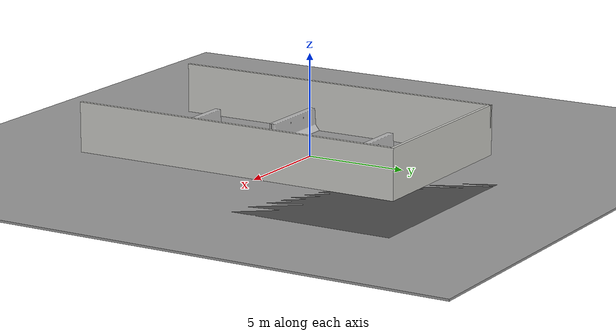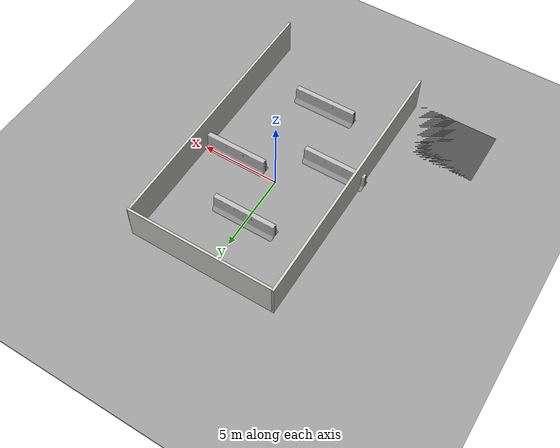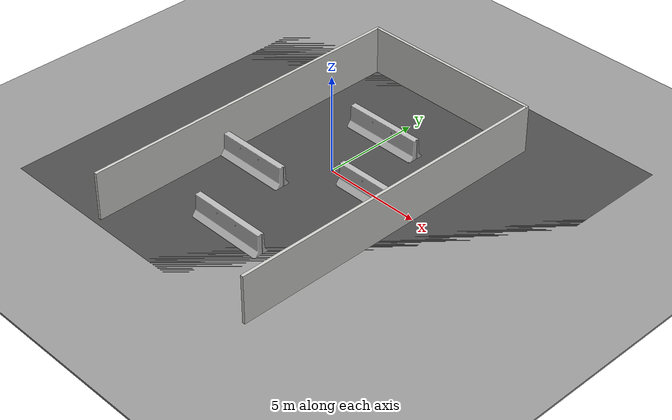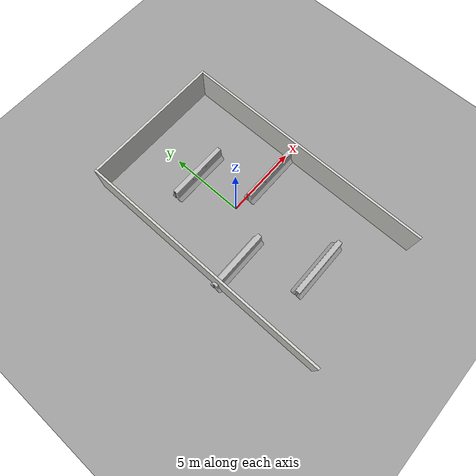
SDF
<sdf version="1.6">
 <world name="default">
  <model name="ground_plane">
   <static>1</static>
   <link name="link">
    <collision name="collision">
     <geometry><plane><normal>0 0 1</normal><size>100 100</size></plane></geometry>
     <surface><friction><ode><mu>100</mu><mu2>50</mu2></ode></friction></surface>
    </collision>
    <visual name="visual">
     <cast_shadows>0</cast_shadows>
     <geometry><plane><normal>0 0 1</normal><size>100 100</size></plane></geometry>
     <material>
      <script><uri>file://media/materials/scripts/gazebo.material</uri><name>Gazebo/Grey</name></script>
     </material>
    </visual>
   </link>
  </model>
  <model name="gazebo_course_1_medium">
   <pose>0.292104 -1.15931 0 0 -0 0</pose>
   <link name="Wall_2">
    <collision name="Wall_2_Collision">
     <geometry><box><size>17 0.15 2.5</size></box></geometry>
     <pose>0 0 1.25 0 -0 0</pose>
    </collision>
    <visual name="Wall_2_Visual">
     <pose>0 0 1.25 0 -0 0</pose>
     <geometry><box><size>17 0.15 2.5</size></box></geometry>
     <material>
      <script><uri>file://media/materials/scripts/gazebo.material</uri><name>Gazebo/CeilingTiled</name></script>
      <ambient>1 1 1 1</ambient>
     </material>
     <meta><layer>0</layer></meta>
    </visual>
    <pose>-4.67522 0.000232 0 0 -0 1.5708</pose>
   </link>
   <link name="Wall_4">
    <collision name="Wall_4_Collision">
     <geometry><box><size>9.5 0.15 2.5</size></box></geometry>
     <pose>0 0 1.25 0 -0 0</pose>
    </collision>
    <visual name="Wall_4_Visual">
     <pose>0 0 1.25 0 -0 0</pose>
     <geometry><box><size>9.5 0.15 2.5</size></box></geometry>
     <material>
      <script><uri>file://media/materials/scripts/gazebo.material</uri><name>Gazebo/CeilingTiled</name></script>
      <ambient>1 1 1 1</ambient>
     </material>
     <meta><layer>0</layer></meta>
    </visual>
    <pose>-0 8.425 0 0 -0 -5e-05</pose>
   </link>
   <link name="Wall_5">
    <collision name="Wall_5_Collision">
     <geometry><box><size>17 0.15 2.5</size></box></geometry>
     <pose>0 0 1.25 0 -0 0</pose>
    </collision>
    <visual name="Wall_5_Visual">
     <pose>0 0 1.25 0 -0 0</pose>
     <geometry><box><size>17 0.15 2.5</size></box></geometry>
     <material>
      <script><uri>file://media/materials/scripts/gazebo.material</uri><name>Gazebo/CeilingTiled</name></script>
      <ambient>1 1 1 1</ambient>
     </material>
     <meta><layer>0</layer></meta>
    </visual>
    <pose>4.67522 -0.000234 0 0 -0 -1.5708</pose>
   </link>
   <static>1</static>
  </model>
  <model name="ground_plane_0">
   <static>1</static>
   <link name="link">
    <collision name="collision">
     <geometry><plane><normal>0 0 1</normal><size>100 100</size></plane></geometry>
     <surface><friction><ode><mu>100</mu><mu2>50</mu2></ode></friction></surface>
    </collision>
    <visual name="visual">
     <cast_shadows>0</cast_shadows>
     <geometry><plane><normal>0 0 1</normal><size>100 100</size></plane></geometry>
     <material>
      <script><uri>file://media/materials/scripts/gazebo.material</uri><name>Gazebo/Grey</name></script>
     </material>
    </visual>
   </link>
   <pose>1.69362 -3.92807 0 0 -0 0</pose>
  </model>
  <model name="asphalt_plane">
   <static>1</static>
   <link name="link">
    <collision name="collision"><geometry><box><size>20 20 0.1</size></box></geometry></collision>
    <visual name="visual">
     <cast_shadows>0</cast_shadows>
     <geometry><box><size>20 20 0.1</size></box></geometry>
     <material>
      <script>
       <uri>model://asphalt_plane/materials/scripts</uri>
       <uri>model://asphalt_plane/materials/textures</uri>
       <name>vrc/asphalt</name>
      </script>
     </material>
    </visual>
   </link>
   <pose>0.198005 0.044688 0 0 -0 0</pose>
  </model>
  <model name="jersey_barrier">
   <static>1</static>
   <link name="link">
    <visual name="visual">
     <geometry><mesh><uri>model://jersey_barrier/meshes/jersey_barrier.dae</uri></mesh></geometry>
    </visual>
    <collision name="upright">
     <pose>0 0 0.5715 0 -0 0</pose>
     <geometry><box><size>4.06542 0.3063 1.143</size></box></geometry>
    </collision>
    <collision name="base">
     <pose>0 0 0.032258 0 -0 0</pose>
     <geometry><box><size>4.06542 0.8107 0.064516</size></box></geometry>
    </collision>
    <collision name="base2">
     <pose>0 0 0.1 0 -0 0</pose>
     <geometry><box><size>4.06542 0.65 0.1</size></box></geometry>
    </collision>
    <collision name="base3">
     <pose>0 0 0.2 0 -0 0</pose>
     <geometry><box><size>4.06542 0.5 0.1</size></box></geometry>
    </collision>
    <collision name="left-angle">
     <pose>0 -0.224 0.2401 0.9 -0 0</pose>
     <geometry><box><size>4.06542 0.5 0.064516</size></box></geometry>
    </collision>
    <collision name="right-angle">
     <pose>0 0.224 0.2401 -0.9 0 0</pose>
     <geometry><box><size>4.06542 0.5 0.064516</size></box></geometry>
    </collision>
   </link>
   <pose>0.254427 -6.28561 0 0 -0 0</pose>
  </model>
  <model name="jersey_barrier_0">
   <static>1</static>
   <link name="link">
    <visual name="visual">
     <geometry><mesh><uri>model://jersey_barrier/meshes/jersey_barrier.dae</uri></mesh></geometry>
    </visual>
    <collision name="upright">
     <pose>0 0 0.5715 0 -0 0</pose>
     <geometry><box><size>4.06542 0.3063 1.143</size></box></geometry>
    </collision>
    <collision name="base">
     <pose>0 0 0.032258 0 -0 0</pose>
     <geometry><box><size>4.06542 0.8107 0.064516</size></box></geometry>
    </collision>
    <collision name="base2">
     <pose>0 0 0.1 0 -0 0</pose>
     <geometry><box><size>4.06542 0.65 0.1</size></box></geometry>
    </collision>
    <collision name="base3">
     <pose>0 0 0.2 0 -0 0</pose>
     <geometry><box><size>4.06542 0.5 0.1</size></box></geometry>
    </collision>
    <collision name="left-angle">
     <pose>0 -0.224 0.2401 0.9 -0 0</pose>
     <geometry><box><size>4.06542 0.5 0.064516</size></box></geometry>
    </collision>
    <collision name="right-angle">
     <pose>0 0.224 0.2401 -0.9 0 0</pose>
     <geometry><box><size>4.06542 0.5 0.064516</size></box></geometry>
    </collision>
   </link>
   <pose>-2.60936 -2.44765 0 0 -0 0</pose>
  </model>
  <model name="jersey_barrier_1">
   <static>1</static>
   <link name="link">
    <visual name="visual">
     <geometry><mesh><uri>model://jersey_barrier/meshes/jersey_barrier.dae</uri></mesh></geometry>
    </visual>
    <collision name="upright">
     <pose>0 0 0.5715 0 -0 0</pose>
     <geometry><box><size>4.06542 0.3063 1.143</size></box></geometry>
    </collision>
    <collision name="base">
     <pose>0 0 0.032258 0 -0 0</pose>
     <geometry><box><size>4.06542 0.8107 0.064516</size></box></geometry>
    </collision>
    <collision name="base2">
     <pose>0 0 0.1 0 -0 0</pose>
     <geometry><box><size>4.06542 0.65 0.1</size></box></geometry>
    </collision>
    <collision name="base3">
     <pose>0 0 0.2 0 -0 0</pose>
     <geometry><box><size>4.06542 0.5 0.1</size></box></geometry>
    </collision>
    <collision name="left-angle">
     <pose>0 -0.224 0.2401 0.9 -0 0</pose>
     <geometry><box><size>4.06542 0.5 0.064516</size></box></geometry>
    </collision>
    <collision name="right-angle">
     <pose>0 0.224 0.2401 -0.9 0 0</pose>
     <geometry><box><size>4.06542 0.5 0.064516</size></box></geometry>
    </collision>
   </link>
   <pose>2.9329 -0.261162 0 0 -0 0</pose>
  </model>
  <model name="jersey_barrier_2">
   <static>1</static>
   <link name="link">
    <visual name="visual">
     <geometry><mesh><uri>model://jersey_barrier/meshes/jersey_barrier.dae</uri></mesh></geometry>
    </visual>
    <collision name="upright">
     <pose>0 0 0.5715 0 -0 0</pose>
     <geometry><box><size>4.06542 0.3063 1.143</size></box></geometry>
    </collision>
    <collision name="base">
     <pose>0 0 0.032258 0 -0 0</pose>
     <geometry><box><size>4.06542 0.8107 0.064516</size></box></geometry>
    </collision>
    <collision name="base2">
     <pose>0 0 0.1 0 -0 0</pose>
     <geometry><box><size>4.06542 0.65 0.1</size></box></geometry>
    </collision>
    <collision name="base3">
     <pose>0 0 0.2 0 -0 0</pose>
     <geometry><box><size>4.06542 0.5 0.1</size></box></geometry>
    </collision>
    <collision name="left-angle">
     <pose>0 -0.224 0.2401 0.9 -0 0</pose>
     <geometry><box><size>4.06542 0.5 0.064516</size></box></geometry>
    </collision>
    <collision name="right-angle">
     <pose>0 0.224 0.2401 -0.9 0 0</pose>
     <geometry><box><size>4.06542 0.5 0.064516</size></box></geometry>
    </collision>
   </link>
   <pose>0.048824 3.25519 0 0 -0 0</pose>
  </model>
 </world>
</sdf>
